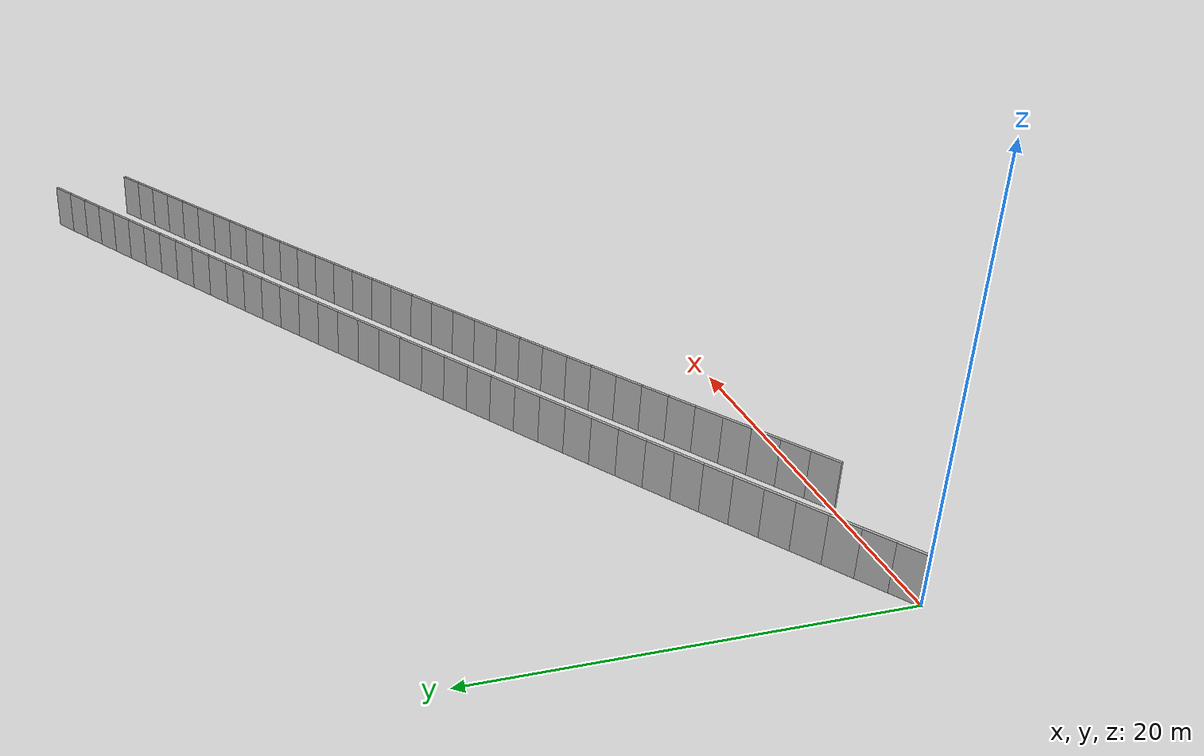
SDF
<?xml version="1.0" ?>
<sdf version="1.6">
  <model name="sps_1344">
    <pose frame="">0 0 0 0 -0 0</pose>
    <static>1</static>
    <self_collide>0</self_collide>
    <allow_auto_disable>0</allow_auto_disable>
    <link name="Wall3202">
      <kinematic>0</kinematic>
      <gravity>1</gravity>
      <self_collide>0</self_collide>
      <collision name="collision">
        <geometry>
          <box>
            <size>1.49639 0.15 2.5</size>
          </box>
        </geometry>
        <pose frame="">0 0 0 0 -0 0</pose>
      </collision>
      <visual name="visual">
        <geometry>
          <box>
            <size>1.49639 0.15 2.5</size>
          </box>
        </geometry>
        <pose frame="">0 0 0 0 -0 0</pose>
        <cast_shadows>1</cast_shadows>
        <transparency>0.0</transparency>
      </visual>
      <pose frame="">49.6462 26.6387 1.25 0 0 -2.60515</pose>
    </link>
    <link name="Wall3203">
      <kinematic>0</kinematic>
      <gravity>1</gravity>
      <self_collide>0</self_collide>
      <collision name="collision">
        <geometry>
          <box>
            <size>1.4967 0.15 2.5</size>
          </box>
        </geometry>
        <pose frame="">0 0 0 0 -0 0</pose>
      </collision>
      <visual name="visual">
        <geometry>
          <box>
            <size>1.4967 0.15 2.5</size>
          </box>
        </geometry>
        <pose frame="">0 0 0 0 -0 0</pose>
        <cast_shadows>1</cast_shadows>
        <transparency>0.0</transparency>
      </visual>
      <pose frame="">48.3605 25.8728 1.25 0 0 -2.60352</pose>
    </link>
    <link name="Wall3204">
      <kinematic>0</kinematic>
      <gravity>1</gravity>
      <self_collide>0</self_collide>
      <collision name="collision">
        <geometry>
          <box>
            <size>1.49641 0.15 2.5</size>
          </box>
        </geometry>
        <pose frame="">0 0 0 0 -0 0</pose>
      </collision>
      <visual name="visual">
        <geometry>
          <box>
            <size>1.49641 0.15 2.5</size>
          </box>
        </geometry>
        <pose frame="">0 0 0 0 -0 0</pose>
        <cast_shadows>1</cast_shadows>
        <transparency>0.0</transparency>
      </visual>
      <pose frame="">47.0759 25.1049 1.25 0 0 -2.60203</pose>
    </link>
    <link name="Wall3205">
      <kinematic>0</kinematic>
      <gravity>1</gravity>
      <self_collide>0</self_collide>
      <collision name="collision">
        <geometry>
          <box>
            <size>1.49652 0.15 2.5</size>
          </box>
        </geometry>
        <pose frame="">0 0 0 0 -0 0</pose>
      </collision>
      <visual name="visual">
        <geometry>
          <box>
            <size>1.49652 0.15 2.5</size>
          </box>
        </geometry>
        <pose frame="">0 0 0 0 -0 0</pose>
        <cast_shadows>1</cast_shadows>
        <transparency>0.0</transparency>
      </visual>
      <pose frame="">45.7927 24.3351 1.25 0 0 -2.60055</pose>
    </link>
    <link name="Wall3206">
      <kinematic>0</kinematic>
      <gravity>1</gravity>
      <self_collide>0</self_collide>
      <collision name="collision">
        <geometry>
          <box>
            <size>1.49653 0.15 2.5</size>
          </box>
        </geometry>
        <pose frame="">0 0 0 0 -0 0</pose>
      </collision>
      <visual name="visual">
        <geometry>
          <box>
            <size>1.49653 0.15 2.5</size>
          </box>
        </geometry>
        <pose frame="">0 0 0 0 -0 0</pose>
        <cast_shadows>1</cast_shadows>
        <transparency>0.0</transparency>
      </visual>
      <pose frame="">44.5106 23.5632 1.25 0 0 -2.5988</pose>
    </link>
    <link name="Wall3207">
      <kinematic>0</kinematic>
      <gravity>1</gravity>
      <self_collide>0</self_collide>
      <collision name="collision">
        <geometry>
          <box>
            <size>1.49648 0.15 2.5</size>
          </box>
        </geometry>
        <pose frame="">0 0 0 0 -0 0</pose>
      </collision>
      <visual name="visual">
        <geometry>
          <box>
            <size>1.49648 0.15 2.5</size>
          </box>
        </geometry>
        <pose frame="">0 0 0 0 -0 0</pose>
        <cast_shadows>1</cast_shadows>
        <transparency>0.0</transparency>
      </visual>
      <pose frame="">43.2298 22.7892 1.25 0 0 -2.5972</pose>
    </link>
    <link name="Wall3208">
      <kinematic>0</kinematic>
      <gravity>1</gravity>
      <self_collide>0</self_collide>
      <collision name="collision">
        <geometry>
          <box>
            <size>1.49655 0.15 2.5</size>
          </box>
        </geometry>
        <pose frame="">0 0 0 0 -0 0</pose>
      </collision>
      <visual name="visual">
        <geometry>
          <box>
            <size>1.49655 0.15 2.5</size>
          </box>
        </geometry>
        <pose frame="">0 0 0 0 -0 0</pose>
        <cast_shadows>1</cast_shadows>
        <transparency>0.0</transparency>
      </visual>
      <pose frame="">41.9502 22.0132 1.25 0 0 -2.5957</pose>
    </link>
    <link name="Wall3209">
      <kinematic>0</kinematic>
      <gravity>1</gravity>
      <self_collide>0</self_collide>
      <collision name="collision">
        <geometry>
          <box>
            <size>1.49663 0.15 2.5</size>
          </box>
        </geometry>
        <pose frame="">0 0 0 0 -0 0</pose>
      </collision>
      <visual name="visual">
        <geometry>
          <box>
            <size>1.49663 0.15 2.5</size>
          </box>
        </geometry>
        <pose frame="">0 0 0 0 -0 0</pose>
        <cast_shadows>1</cast_shadows>
        <transparency>0.0</transparency>
      </visual>
      <pose frame="">40.6717 21.2351 1.25 0 0 -2.59397</pose>
    </link>
    <link name="Wall3210">
      <kinematic>0</kinematic>
      <gravity>1</gravity>
      <self_collide>0</self_collide>
      <collision name="collision">
        <geometry>
          <box>
            <size>1.49641 0.15 2.5</size>
          </box>
        </geometry>
        <pose frame="">0 0 0 0 -0 0</pose>
      </collision>
      <visual name="visual">
        <geometry>
          <box>
            <size>1.49641 0.15 2.5</size>
          </box>
        </geometry>
        <pose frame="">0 0 0 0 -0 0</pose>
        <cast_shadows>1</cast_shadows>
        <transparency>0.0</transparency>
      </visual>
      <pose frame="">39.3946 20.455 1.25 0 0 -2.59249</pose>
    </link>
    <link name="Wall3211">
      <kinematic>0</kinematic>
      <gravity>1</gravity>
      <self_collide>0</self_collide>
      <collision name="collision">
        <geometry>
          <box>
            <size>1.49634 0.15 2.5</size>
          </box>
        </geometry>
        <pose frame="">0 0 0 0 -0 0</pose>
      </collision>
      <visual name="visual">
        <geometry>
          <box>
            <size>1.49634 0.15 2.5</size>
          </box>
        </geometry>
        <pose frame="">0 0 0 0 -0 0</pose>
        <cast_shadows>1</cast_shadows>
        <transparency>0.0</transparency>
      </visual>
      <pose frame="">38.1189 19.673 1.25 0 0 -2.59093</pose>
    </link>
    <link name="Wall3212">
      <kinematic>0</kinematic>
      <gravity>1</gravity>
      <self_collide>0</self_collide>
      <collision name="collision">
        <geometry>
          <box>
            <size>1.49658 0.15 2.5</size>
          </box>
        </geometry>
        <pose frame="">0 0 0 0 -0 0</pose>
      </collision>
      <visual name="visual">
        <geometry>
          <box>
            <size>1.49658 0.15 2.5</size>
          </box>
        </geometry>
        <pose frame="">0 0 0 0 -0 0</pose>
        <cast_shadows>1</cast_shadows>
        <transparency>0.0</transparency>
      </visual>
      <pose frame="">36.8443 18.8889 1.25 0 0 -2.58926</pose>
    </link>
    <link name="Wall3213">
      <kinematic>0</kinematic>
      <gravity>1</gravity>
      <self_collide>0</self_collide>
      <collision name="collision">
        <geometry>
          <box>
            <size>1.49642 0.15 2.5</size>
          </box>
        </geometry>
        <pose frame="">0 0 0 0 -0 0</pose>
      </collision>
      <visual name="visual">
        <geometry>
          <box>
            <size>1.49642 0.15 2.5</size>
          </box>
        </geometry>
        <pose frame="">0 0 0 0 -0 0</pose>
        <cast_shadows>1</cast_shadows>
        <transparency>0.0</transparency>
      </visual>
      <pose frame="">35.5709 18.1028 1.25 0 0 -2.58781</pose>
    </link>
    <link name="Wall3214">
      <kinematic>0</kinematic>
      <gravity>1</gravity>
      <self_collide>0</self_collide>
      <collision name="collision">
        <geometry>
          <box>
            <size>1.49659 0.15 2.5</size>
          </box>
        </geometry>
        <pose frame="">0 0 0 0 -0 0</pose>
      </collision>
      <visual name="visual">
        <geometry>
          <box>
            <size>1.49659 0.15 2.5</size>
          </box>
        </geometry>
        <pose frame="">0 0 0 0 -0 0</pose>
        <cast_shadows>1</cast_shadows>
        <transparency>0.0</transparency>
      </visual>
      <pose frame="">34.2987 17.3147 1.25 0 0 -2.58615</pose>
    </link>
    <link name="Wall3215">
      <kinematic>0</kinematic>
      <gravity>1</gravity>
      <self_collide>0</self_collide>
      <collision name="collision">
        <geometry>
          <box>
            <size>1.49647 0.15 2.5</size>
          </box>
        </geometry>
        <pose frame="">0 0 0 0 -0 0</pose>
      </collision>
      <visual name="visual">
        <geometry>
          <box>
            <size>1.49647 0.15 2.5</size>
          </box>
        </geometry>
        <pose frame="">0 0 0 0 -0 0</pose>
        <cast_shadows>1</cast_shadows>
        <transparency>0.0</transparency>
      </visual>
      <pose frame="">33.0278 16.5245 1.25 0 0 -2.58451</pose>
    </link>
    <link name="Wall3216">
      <kinematic>0</kinematic>
      <gravity>1</gravity>
      <self_collide>0</self_collide>
      <collision name="collision">
        <geometry>
          <box>
            <size>1.4965 0.15 2.5</size>
          </box>
        </geometry>
        <pose frame="">0 0 0 0 -0 0</pose>
      </collision>
      <visual name="visual">
        <geometry>
          <box>
            <size>1.4965 0.15 2.5</size>
          </box>
        </geometry>
        <pose frame="">0 0 0 0 -0 0</pose>
        <cast_shadows>1</cast_shadows>
        <transparency>0.0</transparency>
      </visual>
      <pose frame="">31.7582 15.7323 1.25 0 0 -2.58294</pose>
    </link>
    <link name="Wall3217">
      <kinematic>0</kinematic>
      <gravity>1</gravity>
      <self_collide>0</self_collide>
      <collision name="collision">
        <geometry>
          <box>
            <size>1.49658 0.15 2.5</size>
          </box>
        </geometry>
        <pose frame="">0 0 0 0 -0 0</pose>
      </collision>
      <visual name="visual">
        <geometry>
          <box>
            <size>1.49658 0.15 2.5</size>
          </box>
        </geometry>
        <pose frame="">0 0 0 0 -0 0</pose>
        <cast_shadows>1</cast_shadows>
        <transparency>0.0</transparency>
      </visual>
      <pose frame="">30.4898 14.9381 1.25 0 0 -2.58139</pose>
    </link>
    <link name="Wall3218">
      <kinematic>0</kinematic>
      <gravity>1</gravity>
      <self_collide>0</self_collide>
      <collision name="collision">
        <geometry>
          <box>
            <size>1.49634 0.15 2.5</size>
          </box>
        </geometry>
        <pose frame="">0 0 0 0 -0 0</pose>
      </collision>
      <visual name="visual">
        <geometry>
          <box>
            <size>1.49634 0.15 2.5</size>
          </box>
        </geometry>
        <pose frame="">0 0 0 0 -0 0</pose>
        <cast_shadows>1</cast_shadows>
        <transparency>0.0</transparency>
      </visual>
      <pose frame="">29.2226 14.142 1.25 0 0 -2.57988</pose>
    </link>
    <link name="Wall3219">
      <kinematic>0</kinematic>
      <gravity>1</gravity>
      <self_collide>0</self_collide>
      <collision name="collision">
        <geometry>
          <box>
            <size>1.49663 0.15 2.5</size>
          </box>
        </geometry>
        <pose frame="">0 0 0 0 -0 0</pose>
      </collision>
      <visual name="visual">
        <geometry>
          <box>
            <size>1.49663 0.15 2.5</size>
          </box>
        </geometry>
        <pose frame="">0 0 0 0 -0 0</pose>
        <cast_shadows>1</cast_shadows>
        <transparency>0.0</transparency>
      </visual>
      <pose frame="">27.9567 13.3439 1.25 0 0 -2.57827</pose>
    </link>
    <link name="Wall3220">
      <kinematic>0</kinematic>
      <gravity>1</gravity>
      <self_collide>0</self_collide>
      <collision name="collision">
        <geometry>
          <box>
            <size>1.49652 0.15 2.5</size>
          </box>
        </geometry>
        <pose frame="">0 0 0 0 -0 0</pose>
      </collision>
      <visual name="visual">
        <geometry>
          <box>
            <size>1.49652 0.15 2.5</size>
          </box>
        </geometry>
        <pose frame="">0 0 0 0 -0 0</pose>
        <cast_shadows>1</cast_shadows>
        <transparency>0.0</transparency>
      </visual>
      <pose frame="">26.6921 12.5437 1.25 0 0 -2.57663</pose>
    </link>
    <link name="Wall3221">
      <kinematic>0</kinematic>
      <gravity>1</gravity>
      <self_collide>0</self_collide>
      <collision name="collision">
        <geometry>
          <box>
            <size>1.49643 0.15 2.5</size>
          </box>
        </geometry>
        <pose frame="">0 0 0 0 -0 0</pose>
      </collision>
      <visual name="visual">
        <geometry>
          <box>
            <size>1.49643 0.15 2.5</size>
          </box>
        </geometry>
        <pose frame="">0 0 0 0 -0 0</pose>
        <cast_shadows>1</cast_shadows>
        <transparency>0.0</transparency>
      </visual>
      <pose frame="">25.4288 11.7415 1.25 0 0 -2.57505</pose>
    </link>
    <link name="Wall3222">
      <kinematic>0</kinematic>
      <gravity>1</gravity>
      <self_collide>0</self_collide>
      <collision name="collision">
        <geometry>
          <box>
            <size>1.49652 0.15 2.5</size>
          </box>
        </geometry>
        <pose frame="">0 0 0 0 -0 0</pose>
      </collision>
      <visual name="visual">
        <geometry>
          <box>
            <size>1.49652 0.15 2.5</size>
          </box>
        </geometry>
        <pose frame="">0 0 0 0 -0 0</pose>
        <cast_shadows>1</cast_shadows>
        <transparency>0.0</transparency>
      </visual>
      <pose frame="">24.1667 10.9373 1.25 0 0 -2.57344</pose>
    </link>
    <link name="Wall3223">
      <kinematic>0</kinematic>
      <gravity>1</gravity>
      <self_collide>0</self_collide>
      <collision name="collision">
        <geometry>
          <box>
            <size>1.49644 0.15 2.5</size>
          </box>
        </geometry>
        <pose frame="">0 0 0 0 -0 0</pose>
      </collision>
      <visual name="visual">
        <geometry>
          <box>
            <size>1.49644 0.15 2.5</size>
          </box>
        </geometry>
        <pose frame="">0 0 0 0 -0 0</pose>
        <cast_shadows>1</cast_shadows>
        <transparency>0.0</transparency>
      </visual>
      <pose frame="">22.9059 10.1312 1.25 0 0 -2.57201</pose>
    </link>
    <link name="Wall3224">
      <kinematic>0</kinematic>
      <gravity>1</gravity>
      <self_collide>0</self_collide>
      <collision name="collision">
        <geometry>
          <box>
            <size>1.49645 0.15 2.5</size>
          </box>
        </geometry>
        <pose frame="">0 0 0 0 -0 0</pose>
      </collision>
      <visual name="visual">
        <geometry>
          <box>
            <size>1.49645 0.15 2.5</size>
          </box>
        </geometry>
        <pose frame="">0 0 0 0 -0 0</pose>
        <cast_shadows>1</cast_shadows>
        <transparency>0.0</transparency>
      </visual>
      <pose frame="">21.6464 9.32307 1.25 0 0 -2.57026</pose>
    </link>
    <link name="Wall3225">
      <kinematic>0</kinematic>
      <gravity>1</gravity>
      <self_collide>0</self_collide>
      <collision name="collision">
        <geometry>
          <box>
            <size>1.49661 0.15 2.5</size>
          </box>
        </geometry>
        <pose frame="">0 0 0 0 -0 0</pose>
      </collision>
      <visual name="visual">
        <geometry>
          <box>
            <size>1.49661 0.15 2.5</size>
          </box>
        </geometry>
        <pose frame="">0 0 0 0 -0 0</pose>
        <cast_shadows>1</cast_shadows>
        <transparency>0.0</transparency>
      </visual>
      <pose frame="">20.3883 8.51277 1.25 0 0 -2.56859</pose>
    </link>
    <link name="Wall3226">
      <kinematic>0</kinematic>
      <gravity>1</gravity>
      <self_collide>0</self_collide>
      <collision name="collision">
        <geometry>
          <box>
            <size>1.4965 0.15 2.5</size>
          </box>
        </geometry>
        <pose frame="">0 0 0 0 -0 0</pose>
      </collision>
      <visual name="visual">
        <geometry>
          <box>
            <size>1.4965 0.15 2.5</size>
          </box>
        </geometry>
        <pose frame="">0 0 0 0 -0 0</pose>
        <cast_shadows>1</cast_shadows>
        <transparency>0.0</transparency>
      </visual>
      <pose frame="">19.1313 7.70058 1.25 0 0 -2.56728</pose>
    </link>
    <link name="Wall3227">
      <kinematic>0</kinematic>
      <gravity>1</gravity>
      <self_collide>0</self_collide>
      <collision name="collision">
        <geometry>
          <box>
            <size>1.49662 0.15 2.5</size>
          </box>
        </geometry>
        <pose frame="">0 0 0 0 -0 0</pose>
      </collision>
      <visual name="visual">
        <geometry>
          <box>
            <size>1.49662 0.15 2.5</size>
          </box>
        </geometry>
        <pose frame="">0 0 0 0 -0 0</pose>
        <cast_shadows>1</cast_shadows>
        <transparency>0.0</transparency>
      </visual>
      <pose frame="">17.8756 6.8864 1.25 0 0 -2.56543</pose>
    </link>
    <link name="Wall3228">
      <kinematic>0</kinematic>
      <gravity>1</gravity>
      <self_collide>0</self_collide>
      <collision name="collision">
        <geometry>
          <box>
            <size>1.49634 0.15 2.5</size>
          </box>
        </geometry>
        <pose frame="">0 0 0 0 -0 0</pose>
      </collision>
      <visual name="visual">
        <geometry>
          <box>
            <size>1.49634 0.15 2.5</size>
          </box>
        </geometry>
        <pose frame="">0 0 0 0 -0 0</pose>
        <cast_shadows>1</cast_shadows>
        <transparency>0.0</transparency>
      </visual>
      <pose frame="">16.6213 6.0702 1.25 0 0 -2.564</pose>
    </link>
    <link name="Wall3229">
      <kinematic>0</kinematic>
      <gravity>1</gravity>
      <self_collide>0</self_collide>
      <collision name="collision">
        <geometry>
          <box>
            <size>1.49657 0.15 2.5</size>
          </box>
        </geometry>
        <pose frame="">0 0 0 0 -0 0</pose>
      </collision>
      <visual name="visual">
        <geometry>
          <box>
            <size>1.49657 0.15 2.5</size>
          </box>
        </geometry>
        <pose frame="">0 0 0 0 -0 0</pose>
        <cast_shadows>1</cast_shadows>
        <transparency>0.0</transparency>
      </visual>
      <pose frame="">15.3682 5.25209 1.25 0 0 -2.56235</pose>
    </link>
    <link name="Wall3230">
      <kinematic>0</kinematic>
      <gravity>1</gravity>
      <self_collide>0</self_collide>
      <collision name="collision">
        <geometry>
          <box>
            <size>1.49631 0.15 2.5</size>
          </box>
        </geometry>
        <pose frame="">0 0 0 0 -0 0</pose>
      </collision>
      <visual name="visual">
        <geometry>
          <box>
            <size>1.49631 0.15 2.5</size>
          </box>
        </geometry>
        <pose frame="">0 0 0 0 -0 0</pose>
        <cast_shadows>1</cast_shadows>
        <transparency>0.0</transparency>
      </visual>
      <pose frame="">14.1165 4.43199 1.25 0 0 -2.56082</pose>
    </link>
    <link name="Wall3231">
      <kinematic>0</kinematic>
      <gravity>1</gravity>
      <self_collide>0</self_collide>
      <collision name="collision">
        <geometry>
          <box>
            <size>1.49655 0.15 2.5</size>
          </box>
        </geometry>
        <pose frame="">0 0 0 0 -0 0</pose>
      </collision>
      <visual name="visual">
        <geometry>
          <box>
            <size>1.49655 0.15 2.5</size>
          </box>
        </geometry>
        <pose frame="">0 0 0 0 -0 0</pose>
        <cast_shadows>1</cast_shadows>
        <transparency>0.0</transparency>
      </visual>
      <pose frame="">12.8661 3.60991 1.25 0 0 -2.55917</pose>
    </link>
    <link name="Wall3232">
      <kinematic>0</kinematic>
      <gravity>1</gravity>
      <self_collide>0</self_collide>
      <collision name="collision">
        <geometry>
          <box>
            <size>1.49654 0.15 2.5</size>
          </box>
        </geometry>
        <pose frame="">0 0 0 0 -0 0</pose>
      </collision>
      <visual name="visual">
        <geometry>
          <box>
            <size>1.49654 0.15 2.5</size>
          </box>
        </geometry>
        <pose frame="">0 0 0 0 -0 0</pose>
        <cast_shadows>1</cast_shadows>
        <transparency>0.0</transparency>
      </visual>
      <pose frame="">11.6169 2.78581 1.25 0 0 -2.5577</pose>
    </link>
    <link name="Wall3233">
      <kinematic>0</kinematic>
      <gravity>1</gravity>
      <self_collide>0</self_collide>
      <collision name="collision">
        <geometry>
          <box>
            <size>1.49648 0.15 2.5</size>
          </box>
        </geometry>
        <pose frame="">0 0 0 0 -0 0</pose>
      </collision>
      <visual name="visual">
        <geometry>
          <box>
            <size>1.49648 0.15 2.5</size>
          </box>
        </geometry>
        <pose frame="">0 0 0 0 -0 0</pose>
        <cast_shadows>1</cast_shadows>
        <transparency>0.0</transparency>
      </visual>
      <pose frame="">10.369 1.95979 1.25 0 0 -2.55606</pose>
    </link>
    <link name="Wall3234">
      <kinematic>0</kinematic>
      <gravity>1</gravity>
      <self_collide>0</self_collide>
      <collision name="collision">
        <geometry>
          <box>
            <size>1.49655 0.15 2.5</size>
          </box>
        </geometry>
        <pose frame="">0 0 0 0 -0 0</pose>
      </collision>
      <visual name="visual">
        <geometry>
          <box>
            <size>1.49655 0.15 2.5</size>
          </box>
        </geometry>
        <pose frame="">0 0 0 0 -0 0</pose>
        <cast_shadows>1</cast_shadows>
        <transparency>0.0</transparency>
      </visual>
      <pose frame="">9.12246 1.13179 1.25 0 0 -2.55452</pose>
    </link>
    <link name="Wall3235">
      <kinematic>0</kinematic>
      <gravity>1</gravity>
      <self_collide>0</self_collide>
      <collision name="collision">
        <geometry>
          <box>
            <size>1.49655 0.15 2.5</size>
          </box>
        </geometry>
        <pose frame="">0 0 0 0 -0 0</pose>
      </collision>
      <visual name="visual">
        <geometry>
          <box>
            <size>1.49655 0.15 2.5</size>
          </box>
        </geometry>
        <pose frame="">0 0 0 0 -0 0</pose>
        <cast_shadows>1</cast_shadows>
        <transparency>0.0</transparency>
      </visual>
      <pose frame="">7.87716 0.301803 1.25 0 0 -2.5529</pose>
    </link>
    <link name="Wall5812">
      <kinematic>0</kinematic>
      <gravity>1</gravity>
      <self_collide>0</self_collide>
      <collision name="collision">
        <geometry>
          <box>
            <size>1.50314 0.15 2.5</size>
          </box>
        </geometry>
        <pose frame="">0 0 0 0 -0 0</pose>
      </collision>
      <visual name="visual">
        <geometry>
          <box>
            <size>1.50314 0.15 2.5</size>
          </box>
        </geometry>
        <pose frame="">0 0 0 0 -0 0</pose>
        <cast_shadows>1</cast_shadows>
        <transparency>0.0</transparency>
      </visual>
      <pose frame="">48.8134 30.9586 1.25 0 0 -2.60674</pose>
    </link>
    <link name="Wall5813">
      <kinematic>0</kinematic>
      <gravity>1</gravity>
      <self_collide>0</self_collide>
      <collision name="collision">
        <geometry>
          <box>
            <size>1.50315 0.15 2.5</size>
          </box>
        </geometry>
        <pose frame="">0 0 0 0 -0 0</pose>
      </collision>
      <visual name="visual">
        <geometry>
          <box>
            <size>1.50315 0.15 2.5</size>
          </box>
        </geometry>
        <pose frame="">0 0 0 0 -0 0</pose>
        <cast_shadows>1</cast_shadows>
        <transparency>0.0</transparency>
      </visual>
      <pose frame="">47.5208 30.1914 1.25 0 0 -2.60514</pose>
    </link>
    <link name="Wall5814">
      <kinematic>0</kinematic>
      <gravity>1</gravity>
      <self_collide>0</self_collide>
      <collision name="collision">
        <geometry>
          <box>
            <size>1.50282 0.15 2.5</size>
          </box>
        </geometry>
        <pose frame="">0 0 0 0 -0 0</pose>
      </collision>
      <visual name="visual">
        <geometry>
          <box>
            <size>1.50282 0.15 2.5</size>
          </box>
        </geometry>
        <pose frame="">0 0 0 0 -0 0</pose>
        <cast_shadows>1</cast_shadows>
        <transparency>0.0</transparency>
      </visual>
      <pose frame="">46.2295 29.4223 1.25 0 0 -2.60368</pose>
    </link>
    <link name="Wall5815">
      <kinematic>0</kinematic>
      <gravity>1</gravity>
      <self_collide>0</self_collide>
      <collision name="collision">
        <geometry>
          <box>
            <size>1.50323 0.15 2.5</size>
          </box>
        </geometry>
        <pose frame="">0 0 0 0 -0 0</pose>
      </collision>
      <visual name="visual">
        <geometry>
          <box>
            <size>1.50323 0.15 2.5</size>
          </box>
        </geometry>
        <pose frame="">0 0 0 0 -0 0</pose>
        <cast_shadows>1</cast_shadows>
        <transparency>0.0</transparency>
      </visual>
      <pose frame="">44.9394 28.6511 1.25 0 0 -2.60195</pose>
    </link>
    <link name="Wall5816">
      <kinematic>0</kinematic>
      <gravity>1</gravity>
      <self_collide>0</self_collide>
      <collision name="collision">
        <geometry>
          <box>
            <size>1.50297 0.15 2.5</size>
          </box>
        </geometry>
        <pose frame="">0 0 0 0 -0 0</pose>
      </collision>
      <visual name="visual">
        <geometry>
          <box>
            <size>1.50297 0.15 2.5</size>
          </box>
        </geometry>
        <pose frame="">0 0 0 0 -0 0</pose>
        <cast_shadows>1</cast_shadows>
        <transparency>0.0</transparency>
      </visual>
      <pose frame="">43.6505 27.8778 1.25 0 0 -2.60043</pose>
    </link>
    <link name="Wall5817">
      <kinematic>0</kinematic>
      <gravity>1</gravity>
      <self_collide>0</self_collide>
      <collision name="collision">
        <geometry>
          <box>
            <size>1.50315 0.15 2.5</size>
          </box>
        </geometry>
        <pose frame="">0 0 0 0 -0 0</pose>
      </collision>
      <visual name="visual">
        <geometry>
          <box>
            <size>1.50315 0.15 2.5</size>
          </box>
        </geometry>
        <pose frame="">0 0 0 0 -0 0</pose>
        <cast_shadows>1</cast_shadows>
        <transparency>0.0</transparency>
      </visual>
      <pose frame="">42.3629 27.1024 1.25 0 0 -2.59865</pose>
    </link>
    <link name="Wall5818">
      <kinematic>0</kinematic>
      <gravity>1</gravity>
      <self_collide>0</self_collide>
      <collision name="collision">
        <geometry>
          <box>
            <size>1.50302 0.15 2.5</size>
          </box>
        </geometry>
        <pose frame="">0 0 0 0 -0 0</pose>
      </collision>
      <visual name="visual">
        <geometry>
          <box>
            <size>1.50302 0.15 2.5</size>
          </box>
        </geometry>
        <pose frame="">0 0 0 0 -0 0</pose>
        <cast_shadows>1</cast_shadows>
        <transparency>0.0</transparency>
      </visual>
      <pose frame="">41.0766 26.3249 1.25 0 0 -2.59722</pose>
    </link>
    <link name="Wall5819">
      <kinematic>0</kinematic>
      <gravity>1</gravity>
      <self_collide>0</self_collide>
      <collision name="collision">
        <geometry>
          <box>
            <size>1.50307 0.15 2.5</size>
          </box>
        </geometry>
        <pose frame="">0 0 0 0 -0 0</pose>
      </collision>
      <visual name="visual">
        <geometry>
          <box>
            <size>1.50307 0.15 2.5</size>
          </box>
        </geometry>
        <pose frame="">0 0 0 0 -0 0</pose>
        <cast_shadows>1</cast_shadows>
        <transparency>0.0</transparency>
      </visual>
      <pose frame="">39.7914 25.5455 1.25 0 0 -2.59568</pose>
    </link>
    <link name="Wall5820">
      <kinematic>0</kinematic>
      <gravity>1</gravity>
      <self_collide>0</self_collide>
      <collision name="collision">
        <geometry>
          <box>
            <size>1.50292 0.15 2.5</size>
          </box>
        </geometry>
        <pose frame="">0 0 0 0 -0 0</pose>
      </collision>
      <visual name="visual">
        <geometry>
          <box>
            <size>1.50292 0.15 2.5</size>
          </box>
        </geometry>
        <pose frame="">0 0 0 0 -0 0</pose>
        <cast_shadows>1</cast_shadows>
        <transparency>0.0</transparency>
      </visual>
      <pose frame="">38.5075 24.7641 1.25 0 0 -2.59405</pose>
    </link>
    <link name="Wall5821">
      <kinematic>0</kinematic>
      <gravity>1</gravity>
      <self_collide>0</self_collide>
      <collision name="collision">
        <geometry>
          <box>
            <size>1.50323 0.15 2.5</size>
          </box>
        </geometry>
        <pose frame="">0 0 0 0 -0 0</pose>
      </collision>
      <visual name="visual">
        <geometry>
          <box>
            <size>1.50323 0.15 2.5</size>
          </box>
        </geometry>
        <pose frame="">0 0 0 0 -0 0</pose>
        <cast_shadows>1</cast_shadows>
        <transparency>0.0</transparency>
      </visual>
      <pose frame="">37.2248 23.9806 1.25 0 0 -2.59246</pose>
    </link>
    <link name="Wall5822">
      <kinematic>0</kinematic>
      <gravity>1</gravity>
      <self_collide>0</self_collide>
      <collision name="collision">
        <geometry>
          <box>
            <size>1.50312 0.15 2.5</size>
          </box>
        </geometry>
        <pose frame="">0 0 0 0 -0 0</pose>
      </collision>
      <visual name="visual">
        <geometry>
          <box>
            <size>1.50312 0.15 2.5</size>
          </box>
        </geometry>
        <pose frame="">0 0 0 0 -0 0</pose>
        <cast_shadows>1</cast_shadows>
        <transparency>0.0</transparency>
      </visual>
      <pose frame="">35.9431 23.1951 1.25 0 0 -2.59103</pose>
    </link>
    <link name="Wall5823">
      <kinematic>0</kinematic>
      <gravity>1</gravity>
      <self_collide>0</self_collide>
      <collision name="collision">
        <geometry>
          <box>
            <size>1.50307 0.15 2.5</size>
          </box>
        </geometry>
        <pose frame="">0 0 0 0 -0 0</pose>
      </collision>
      <visual name="visual">
        <geometry>
          <box>
            <size>1.50307 0.15 2.5</size>
          </box>
        </geometry>
        <pose frame="">0 0 0 0 -0 0</pose>
        <cast_shadows>1</cast_shadows>
        <transparency>0.0</transparency>
      </visual>
      <pose frame="">34.6628 22.4076 1.25 0 0 -2.5893</pose>
    </link>
    <link name="Wall5824">
      <kinematic>0</kinematic>
      <gravity>1</gravity>
      <self_collide>0</self_collide>
      <collision name="collision">
        <geometry>
          <box>
            <size>1.50297 0.15 2.5</size>
          </box>
        </geometry>
        <pose frame="">0 0 0 0 -0 0</pose>
      </collision>
      <visual name="visual">
        <geometry>
          <box>
            <size>1.50297 0.15 2.5</size>
          </box>
        </geometry>
        <pose frame="">0 0 0 0 -0 0</pose>
        <cast_shadows>1</cast_shadows>
        <transparency>0.0</transparency>
      </visual>
      <pose frame="">33.3839 21.618 1.25 0 0 -2.58763</pose>
    </link>
    <link name="Wall5825">
      <kinematic>0</kinematic>
      <gravity>1</gravity>
      <self_collide>0</self_collide>
      <collision name="collision">
        <geometry>
          <box>
            <size>1.50321 0.15 2.5</size>
          </box>
        </geometry>
        <pose frame="">0 0 0 0 -0 0</pose>
      </collision>
      <visual name="visual">
        <geometry>
          <box>
            <size>1.50321 0.15 2.5</size>
          </box>
        </geometry>
        <pose frame="">0 0 0 0 -0 0</pose>
        <cast_shadows>1</cast_shadows>
        <transparency>0.0</transparency>
      </visual>
      <pose frame="">32.1063 20.8263 1.25 0 0 -2.58606</pose>
    </link>
    <link name="Wall5826">
      <kinematic>0</kinematic>
      <gravity>1</gravity>
      <self_collide>0</self_collide>
      <collision name="collision">
        <geometry>
          <box>
            <size>1.50304 0.15 2.5</size>
          </box>
        </geometry>
        <pose frame="">0 0 0 0 -0 0</pose>
      </collision>
      <visual name="visual">
        <geometry>
          <box>
            <size>1.50304 0.15 2.5</size>
          </box>
        </geometry>
        <pose frame="">0 0 0 0 -0 0</pose>
        <cast_shadows>1</cast_shadows>
        <transparency>0.0</transparency>
      </visual>
      <pose frame="">30.8298 20.0326 1.25 0 0 -2.58456</pose>
    </link>
    <link name="Wall5827">
      <kinematic>0</kinematic>
      <gravity>1</gravity>
      <self_collide>0</self_collide>
      <collision name="collision">
        <geometry>
          <box>
            <size>1.50313 0.15 2.5</size>
          </box>
        </geometry>
        <pose frame="">0 0 0 0 -0 0</pose>
      </collision>
      <visual name="visual">
        <geometry>
          <box>
            <size>1.50313 0.15 2.5</size>
          </box>
        </geometry>
        <pose frame="">0 0 0 0 -0 0</pose>
        <cast_shadows>1</cast_shadows>
        <transparency>0.0</transparency>
      </visual>
      <pose frame="">29.5546 19.2369 1.25 0 0 -2.58292</pose>
    </link>
    <link name="Wall5828">
      <kinematic>0</kinematic>
      <gravity>1</gravity>
      <self_collide>0</self_collide>
      <collision name="collision">
        <geometry>
          <box>
            <size>1.5031 0.15 2.5</size>
          </box>
        </geometry>
        <pose frame="">0 0 0 0 -0 0</pose>
      </collision>
      <visual name="visual">
        <geometry>
          <box>
            <size>1.5031 0.15 2.5</size>
          </box>
        </geometry>
        <pose frame="">0 0 0 0 -0 0</pose>
        <cast_shadows>1</cast_shadows>
        <transparency>0.0</transparency>
      </visual>
      <pose frame="">28.2806 18.4392 1.25 0 0 -2.58142</pose>
    </link>
    <link name="Wall5829">
      <kinematic>0</kinematic>
      <gravity>1</gravity>
      <self_collide>0</self_collide>
      <collision name="collision">
        <geometry>
          <box>
            <size>1.50301 0.15 2.5</size>
          </box>
        </geometry>
        <pose frame="">0 0 0 0 -0 0</pose>
      </collision>
      <visual name="visual">
        <geometry>
          <box>
            <size>1.50301 0.15 2.5</size>
          </box>
        </geometry>
        <pose frame="">0 0 0 0 -0 0</pose>
        <cast_shadows>1</cast_shadows>
        <transparency>0.0</transparency>
      </visual>
      <pose frame="">27.0079 17.6396 1.25 0 0 -2.57985</pose>
    </link>
    <link name="Wall5830">
      <kinematic>0</kinematic>
      <gravity>1</gravity>
      <self_collide>0</self_collide>
      <collision name="collision">
        <geometry>
          <box>
            <size>1.50315 0.15 2.5</size>
          </box>
        </geometry>
        <pose frame="">0 0 0 0 -0 0</pose>
      </collision>
      <visual name="visual">
        <geometry>
          <box>
            <size>1.50315 0.15 2.5</size>
          </box>
        </geometry>
        <pose frame="">0 0 0 0 -0 0</pose>
        <cast_shadows>1</cast_shadows>
        <transparency>0.0</transparency>
      </visual>
      <pose frame="">25.7364 16.8379 1.25 0 0 -2.57818</pose>
    </link>
    <link name="Wall5831">
      <kinematic>0</kinematic>
      <gravity>1</gravity>
      <self_collide>0</self_collide>
      <collision name="collision">
        <geometry>
          <box>
            <size>1.50306 0.15 2.5</size>
          </box>
        </geometry>
        <pose frame="">0 0 0 0 -0 0</pose>
      </collision>
      <visual name="visual">
        <geometry>
          <box>
            <size>1.50306 0.15 2.5</size>
          </box>
        </geometry>
        <pose frame="">0 0 0 0 -0 0</pose>
        <cast_shadows>1</cast_shadows>
        <transparency>0.0</transparency>
      </visual>
      <pose frame="">24.4662 16.0342 1.25 0 0 -2.57675</pose>
    </link>
    <link name="Wall5832">
      <kinematic>0</kinematic>
      <gravity>1</gravity>
      <self_collide>0</self_collide>
      <collision name="collision">
        <geometry>
          <box>
            <size>1.50309 0.15 2.5</size>
          </box>
        </geometry>
        <pose frame="">0 0 0 0 -0 0</pose>
      </collision>
      <visual name="visual">
        <geometry>
          <box>
            <size>1.50309 0.15 2.5</size>
          </box>
        </geometry>
        <pose frame="">0 0 0 0 -0 0</pose>
        <cast_shadows>1</cast_shadows>
        <transparency>0.0</transparency>
      </visual>
      <pose frame="">23.1973 15.2285 1.25 0 0 -2.57498</pose>
    </link>
    <link name="Wall5833">
      <kinematic>0</kinematic>
      <gravity>1</gravity>
      <self_collide>0</self_collide>
      <collision name="collision">
        <geometry>
          <box>
            <size>1.50316 0.15 2.5</size>
          </box>
        </geometry>
        <pose frame="">0 0 0 0 -0 0</pose>
      </collision>
      <visual name="visual">
        <geometry>
          <box>
            <size>1.50316 0.15 2.5</size>
          </box>
        </geometry>
        <pose frame="">0 0 0 0 -0 0</pose>
        <cast_shadows>1</cast_shadows>
        <transparency>0.0</transparency>
      </visual>
      <pose frame="">21.9297 14.4207 1.25 0 0 -2.57347</pose>
    </link>
    <link name="Wall5834">
      <kinematic>0</kinematic>
      <gravity>1</gravity>
      <self_collide>0</self_collide>
      <collision name="collision">
        <geometry>
          <box>
            <size>1.50301 0.15 2.5</size>
          </box>
        </geometry>
        <pose frame="">0 0 0 0 -0 0</pose>
      </collision>
      <visual name="visual">
        <geometry>
          <box>
            <size>1.50301 0.15 2.5</size>
          </box>
        </geometry>
        <pose frame="">0 0 0 0 -0 0</pose>
        <cast_shadows>1</cast_shadows>
        <transparency>0.0</transparency>
      </visual>
      <pose frame="">20.6634 13.6109 1.25 0 0 -2.57181</pose>
    </link>
    <link name="Wall5835">
      <kinematic>0</kinematic>
      <gravity>1</gravity>
      <self_collide>0</self_collide>
      <collision name="collision">
        <geometry>
          <box>
            <size>1.50312 0.15 2.5</size>
          </box>
        </geometry>
        <pose frame="">0 0 0 0 -0 0</pose>
      </collision>
      <visual name="visual">
        <geometry>
          <box>
            <size>1.50312 0.15 2.5</size>
          </box>
        </geometry>
        <pose frame="">0 0 0 0 -0 0</pose>
        <cast_shadows>1</cast_shadows>
        <transparency>0.0</transparency>
      </visual>
      <pose frame="">19.3985 12.7991 1.25 0 0 -2.57027</pose>
    </link>
    <link name="Wall5836">
      <kinematic>0</kinematic>
      <gravity>1</gravity>
      <self_collide>0</self_collide>
      <collision name="collision">
        <geometry>
          <box>
            <size>1.50309 0.15 2.5</size>
          </box>
        </geometry>
        <pose frame="">0 0 0 0 -0 0</pose>
      </collision>
      <visual name="visual">
        <geometry>
          <box>
            <size>1.50309 0.15 2.5</size>
          </box>
        </geometry>
        <pose frame="">0 0 0 0 -0 0</pose>
        <cast_shadows>1</cast_shadows>
        <transparency>0.0</transparency>
      </visual>
      <pose frame="">18.1347 11.9854 1.25 0 0 -2.56881</pose>
    </link>
    <link name="Wall5837">
      <kinematic>0</kinematic>
      <gravity>1</gravity>
      <self_collide>0</self_collide>
      <collision name="collision">
        <geometry>
          <box>
            <size>1.50312 0.15 2.5</size>
          </box>
        </geometry>
        <pose frame="">0 0 0 0 -0 0</pose>
      </collision>
      <visual name="visual">
        <geometry>
          <box>
            <size>1.50312 0.15 2.5</size>
          </box>
        </geometry>
        <pose frame="">0 0 0 0 -0 0</pose>
        <cast_shadows>1</cast_shadows>
        <transparency>0.0</transparency>
      </visual>
      <pose frame="">16.8722 11.1697 1.25 0 0 -2.56713</pose>
    </link>
    <link name="Wall5838">
      <kinematic>0</kinematic>
      <gravity>1</gravity>
      <self_collide>0</self_collide>
      <collision name="collision">
        <geometry>
          <box>
            <size>1.50298 0.15 2.5</size>
          </box>
        </geometry>
        <pose frame="">0 0 0 0 -0 0</pose>
      </collision>
      <visual name="visual">
        <geometry>
          <box>
            <size>1.50298 0.15 2.5</size>
          </box>
        </geometry>
        <pose frame="">0 0 0 0 -0 0</pose>
        <cast_shadows>1</cast_shadows>
        <transparency>0.0</transparency>
      </visual>
      <pose frame="">15.611 10.3519 1.25 0 0 -2.56547</pose>
    </link>
    <link name="Wall5839">
      <kinematic>0</kinematic>
      <gravity>1</gravity>
      <self_collide>0</self_collide>
      <collision name="collision">
        <geometry>
          <box>
            <size>1.50301 0.15 2.5</size>
          </box>
        </geometry>
        <pose frame="">0 0 0 0 -0 0</pose>
      </collision>
      <visual name="visual">
        <geometry>
          <box>
            <size>1.50301 0.15 2.5</size>
          </box>
        </geometry>
        <pose frame="">0 0 0 0 -0 0</pose>
        <cast_shadows>1</cast_shadows>
        <transparency>0.0</transparency>
      </visual>
      <pose frame="">14.3512 9.53221 1.25 0 0 -2.56403</pose>
    </link>
    <link name="Wall5840">
      <kinematic>0</kinematic>
      <gravity>1</gravity>
      <self_collide>0</self_collide>
      <collision name="collision">
        <geometry>
          <box>
            <size>1.50319 0.15 2.5</size>
          </box>
        </geometry>
        <pose frame="">0 0 0 0 -0 0</pose>
      </collision>
      <visual name="visual">
        <geometry>
          <box>
            <size>1.50319 0.15 2.5</size>
          </box>
        </geometry>
        <pose frame="">0 0 0 0 -0 0</pose>
        <cast_shadows>1</cast_shadows>
        <transparency>0.0</transparency>
      </visual>
      <pose frame="">13.0926 8.71049 1.25 0 0 -2.56236</pose>
    </link>
    <link name="Wall5841">
      <kinematic>0</kinematic>
      <gravity>1</gravity>
      <self_collide>0</self_collide>
      <collision name="collision">
        <geometry>
          <box>
            <size>1.50309 0.15 2.5</size>
          </box>
        </geometry>
        <pose frame="">0 0 0 0 -0 0</pose>
      </collision>
      <visual name="visual">
        <geometry>
          <box>
            <size>1.50309 0.15 2.5</size>
          </box>
        </geometry>
        <pose frame="">0 0 0 0 -0 0</pose>
        <cast_shadows>1</cast_shadows>
        <transparency>0.0</transparency>
      </visual>
      <pose frame="">11.8353 7.8867 1.25 0 0 -2.56076</pose>
    </link>
    <link name="Wall5842">
      <kinematic>0</kinematic>
      <gravity>1</gravity>
      <self_collide>0</self_collide>
      <collision name="collision">
        <geometry>
          <box>
            <size>1.50321 0.15 2.5</size>
          </box>
        </geometry>
        <pose frame="">0 0 0 0 -0 0</pose>
      </collision>
      <visual name="visual">
        <geometry>
          <box>
            <size>1.50321 0.15 2.5</size>
          </box>
        </geometry>
        <pose frame="">0 0 0 0 -0 0</pose>
        <cast_shadows>1</cast_shadows>
        <transparency>0.0</transparency>
      </visual>
      <pose frame="">10.5794 7.0609 1.25 0 0 -2.55916</pose>
    </link>
    <link name="Wall5843">
      <kinematic>0</kinematic>
      <gravity>1</gravity>
      <self_collide>0</self_collide>
      <collision name="collision">
        <geometry>
          <box>
            <size>1.50316 0.15 2.5</size>
          </box>
        </geometry>
        <pose frame="">0 0 0 0 -0 0</pose>
      </collision>
      <visual name="visual">
        <geometry>
          <box>
            <size>1.50316 0.15 2.5</size>
          </box>
        </geometry>
        <pose frame="">0 0 0 0 -0 0</pose>
        <cast_shadows>1</cast_shadows>
        <transparency>0.0</transparency>
      </visual>
      <pose frame="">9.32467 6.23308 1.25 0 0 -2.55759</pose>
    </link>
    <link name="Wall5844">
      <kinematic>0</kinematic>
      <gravity>1</gravity>
      <self_collide>0</self_collide>
      <collision name="collision">
        <geometry>
          <box>
            <size>1.50297 0.15 2.5</size>
          </box>
        </geometry>
        <pose frame="">0 0 0 0 -0 0</pose>
      </collision>
      <visual name="visual">
        <geometry>
          <box>
            <size>1.50297 0.15 2.5</size>
          </box>
        </geometry>
        <pose frame="">0 0 0 0 -0 0</pose>
        <cast_shadows>1</cast_shadows>
        <transparency>0.0</transparency>
      </visual>
      <pose frame="">8.07134 5.4034 1.25 0 0 -2.55609</pose>
    </link>
    <link name="Wall5845">
      <kinematic>0</kinematic>
      <gravity>1</gravity>
      <self_collide>0</self_collide>
      <collision name="collision">
        <geometry>
          <box>
            <size>1.5031 0.15 2.5</size>
          </box>
        </geometry>
        <pose frame="">0 0 0 0 -0 0</pose>
      </collision>
      <visual name="visual">
        <geometry>
          <box>
            <size>1.5031 0.15 2.5</size>
          </box>
        </geometry>
        <pose frame="">0 0 0 0 -0 0</pose>
        <cast_shadows>1</cast_shadows>
        <transparency>0.0</transparency>
      </visual>
      <pose frame="">6.81933 4.57179 1.25 0 0 -2.55449</pose>
    </link>
    <link name="Wall5846">
      <kinematic>0</kinematic>
      <gravity>1</gravity>
      <self_collide>0</self_collide>
      <collision name="collision">
        <geometry>
          <box>
            <size>1.50311 0.15 2.5</size>
          </box>
        </geometry>
        <pose frame="">0 0 0 0 -0 0</pose>
      </collision>
      <visual name="visual">
        <geometry>
          <box>
            <size>1.50311 0.15 2.5</size>
          </box>
        </geometry>
        <pose frame="">0 0 0 0 -0 0</pose>
        <cast_shadows>1</cast_shadows>
        <transparency>0.0</transparency>
      </visual>
      <pose frame="">5.56863 3.73808 1.25 0 0 -2.55279</pose>
    </link>
    <link name="Wall5847">
      <kinematic>0</kinematic>
      <gravity>1</gravity>
      <self_collide>0</self_collide>
      <collision name="collision">
        <geometry>
          <box>
            <size>1.50297 0.15 2.5</size>
          </box>
        </geometry>
        <pose frame="">0 0 0 0 -0 0</pose>
      </collision>
      <visual name="visual">
        <geometry>
          <box>
            <size>1.50297 0.15 2.5</size>
          </box>
        </geometry>
        <pose frame="">0 0 0 0 -0 0</pose>
        <cast_shadows>1</cast_shadows>
        <transparency>0.0</transparency>
      </visual>
      <pose frame="">4.31933 2.90239 1.25 0 0 -2.55126</pose>
    </link>
    <link name="Wall5848">
      <kinematic>0</kinematic>
      <gravity>1</gravity>
      <self_collide>0</self_collide>
      <collision name="collision">
        <geometry>
          <box>
            <size>1.50319 0.15 2.5</size>
          </box>
        </geometry>
        <pose frame="">0 0 0 0 -0 0</pose>
      </collision>
      <visual name="visual">
        <geometry>
          <box>
            <size>1.50319 0.15 2.5</size>
          </box>
        </geometry>
        <pose frame="">0 0 0 0 -0 0</pose>
        <cast_shadows>1</cast_shadows>
        <transparency>0.0</transparency>
      </visual>
      <pose frame="">3.07125 2.0648 1.25 0 0 -2.54979</pose>
    </link>
    <link name="Wall5849">
      <kinematic>0</kinematic>
      <gravity>1</gravity>
      <self_collide>0</self_collide>
      <collision name="collision">
        <geometry>
          <box>
            <size>1.50309 0.15 2.5</size>
          </box>
        </geometry>
        <pose frame="">0 0 0 0 -0 0</pose>
      </collision>
      <visual name="visual">
        <geometry>
          <box>
            <size>1.50309 0.15 2.5</size>
          </box>
        </geometry>
        <pose frame="">0 0 0 0 -0 0</pose>
        <cast_shadows>1</cast_shadows>
        <transparency>0.0</transparency>
      </visual>
      <pose frame="">1.82445 1.2252 1.25 0 0 -2.54808</pose>
    </link>
    <link name="Wall5850">
      <kinematic>0</kinematic>
      <gravity>1</gravity>
      <self_collide>0</self_collide>
      <collision name="collision">
        <geometry>
          <box>
            <size>1.50307 0.15 2.5</size>
          </box>
        </geometry>
        <pose frame="">0 0 0 0 -0 0</pose>
      </collision>
      <visual name="visual">
        <geometry>
          <box>
            <size>1.50307 0.15 2.5</size>
          </box>
        </geometry>
        <pose frame="">0 0 0 0 -0 0</pose>
        <cast_shadows>1</cast_shadows>
        <transparency>0.0</transparency>
      </visual>
      <pose frame="">0.579032 0.383681 1.25 0 0 -2.54665</pose>
    </link>
  </model>
</sdf>
